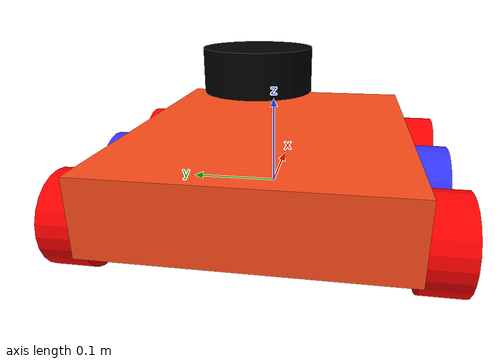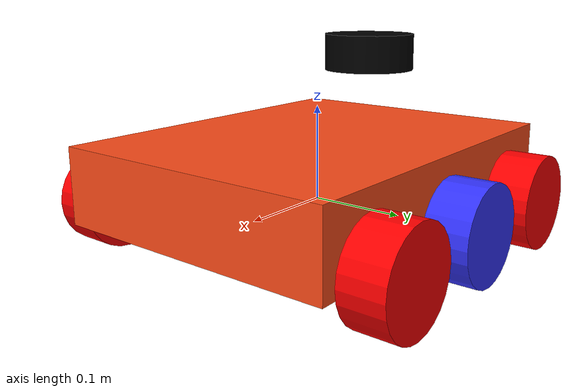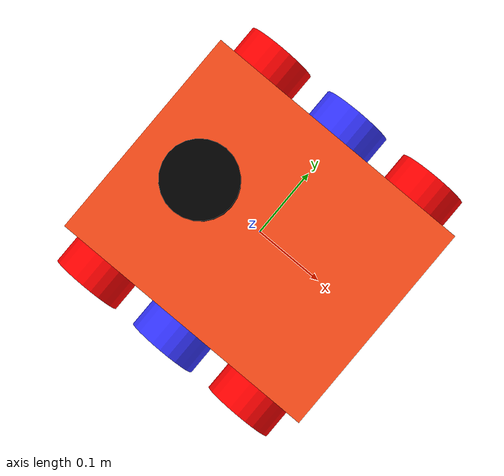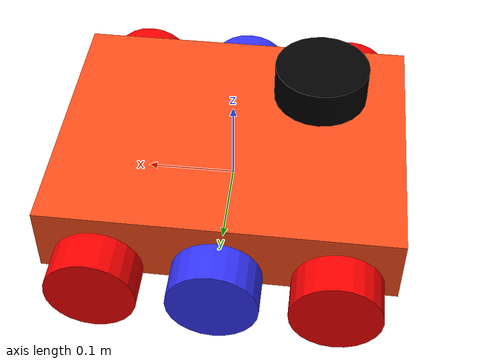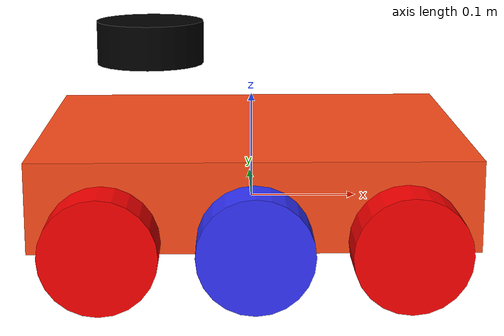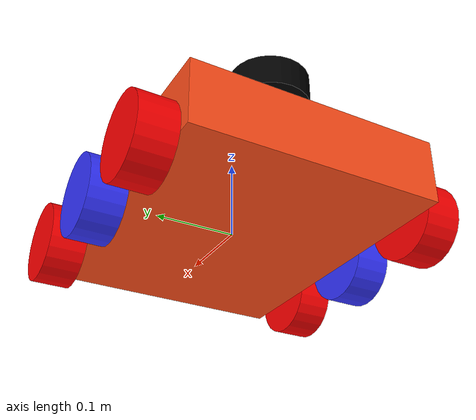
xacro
<?xml version="1.0"?>
<robot xmlns:xacro="http://www.ros.org/wiki/xacro"  name="robot">

    <xacro:arg name="sim_mode" default="false"/>
    <xacro:arg name="use_ros2_control" default="true"/>

    <xacro:include filename="robot_core.xacro" />

    <xacro:if value="$(arg use_ros2_control)">
        <xacro:include filename="ros2_control.xacro" />
    </xacro:if>
    <xacro:unless value="$(arg use_ros2_control)">
        <xacro:include filename="gazebo_diffdrive.xacro" />
    </xacro:unless>

    <xacro:include filename="lidar.xacro"/>

</robot>

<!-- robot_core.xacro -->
<robot xmlns:xacro="http://www.ros.org/wiki/xacro" >

    <xacro:include filename="inertial_macros.xacro"/>

    <xacro:property name="chassis_length" value="0.39"/>
    <xacro:property name="chassis_width" value="0.31"/>
    <xacro:property name="chassis_height" value="0.08"/>
    <xacro:property name="chassis_mass" value="1.0"/>
    <xacro:property name="wheel_radius" value="0.05"/>
    <xacro:property name="wheel_thickness" value="0.045"/>
    <xacro:property name="wheel_mass" value="0.05"/>
    <xacro:property name="wheel_offset_x" value="0.195"/>
    <xacro:property name="wheel_offset_y" value="0.1775"/>
    <xacro:property name="wheel_offset_z" value="0.01"/>

    <material name="white">
        <color rgba="1 1 1 1" />
    </material>

    <material name="orange">
        <color rgba="1 0.3 0.1 1"/>
    </material>

    <material name="blue">
        <color rgba="0.2 0.2 1 1"/>
    </material>

    <material name="black">
        <color rgba="0 0 0 1"/>
    </material>

    <material name="red">
        <color rgba="1 0 0 1"/>
    </material>

    <!-- BASE LINK -->

    <link name="base_link">

    </link>

    <!-- BASE_FOOTPRINT LINK -->

    <!-- CHASSIS LINK -->

    <joint name="chassis_joint" type="fixed">
        <parent link="base_link"/>
        <child link="chassis"/>
        <origin xyz="${-wheel_offset_x} 0 ${-wheel_offset_z}"/>
    </joint>

    <link name="chassis">
        <visual>
            <origin xyz="${chassis_length/2} 0 ${chassis_height/2}"/>
            <geometry>
                <box size="${chassis_length} ${chassis_width} ${chassis_height}"/>
            </geometry>
            <material name="orange"/>
        </visual>
        <collision>
            <origin xyz="${chassis_length/2} 0 ${chassis_height/2}"/>
            <geometry>
                <box size="${chassis_length} ${chassis_width} ${chassis_height}"/>
            </geometry>
        </collision>
        <xacro:inertial_box mass="0.5" x="${chassis_length}" y="${chassis_width}" z="${chassis_height}">
            <origin xyz="${chassis_length/2} 0 ${chassis_height/2}" rpy="0 0 0"/>
        </xacro:inertial_box>
    </link>

    <gazebo reference="chassis">
        <material>Gazebo/Orange</material>
    </gazebo>

    <!-- LEFT WHEEL LINK -->

    <joint name="left_wheel_joint" type="continuous">
        <parent link="base_link"/>
        <child link="left_wheel"/>
        <origin xyz="0 ${wheel_offset_y} 0" rpy="-${pi/2} 0 0" />
        <axis xyz="0 0 1"/>
    </joint>

    <link name="left_wheel">
        <visual>
            <geometry>
                <cylinder radius="${wheel_radius}" length="${wheel_thickness}"/>
            </geometry>
            <material name="blue"/>
        </visual>
        <collision>
            <geometry>
                <sphere radius="${wheel_radius}"/>
            </geometry>
        </collision>
        <xacro:inertial_cylinder mass="${wheel_mass}" length="${wheel_thickness}" radius="${wheel_radius}">
            <origin xyz="0 0 0" rpy="0 0 0"/>
        </xacro:inertial_cylinder>
    </link>

    <gazebo reference="left_wheel">
        <material>Gazebo/Blue</material>
    </gazebo>

    <!-- RIGHT WHEEL LINK -->

    <joint name="right_wheel_joint" type="continuous">
        <parent link="base_link"/>
        <child link="right_wheel"/>
        <origin xyz="0 ${-wheel_offset_y} 0" rpy="${pi/2} 0 0" />
        <axis xyz="0 0 -1"/>
    </joint>

    <link name="right_wheel">
        <visual>
            <geometry>
                <cylinder radius="${wheel_radius}" length="${wheel_thickness}"/>
            </geometry>
            <material name="blue"/>
        </visual>
        <collision>
            <geometry>
                <sphere radius="${wheel_radius}"/>
            </geometry>
        </collision>
        <xacro:inertial_cylinder mass="${wheel_mass}" length="${wheel_thickness}" radius="${wheel_radius}">
            <origin xyz="0 0 0" rpy="0 0 0"/>
        </xacro:inertial_cylinder>
    </link>

    <gazebo reference="right_wheel">
        <material>Gazebo/Blue</material>
    </gazebo>

    <!-- RIGHT ROLLER WHEEL LINK -->

    <joint name="right_roller_joint1" type="fixed">
        <parent link="base_link"/>
        <child link="right_roller1"/>
        <origin xyz="0.13 ${-wheel_offset_y} 0" rpy="${pi/2} 0 0" />
        <axis xyz="0 0 -1"/>
    </joint>

    <link name="right_roller1">
        <visual>
            <geometry>
                <cylinder radius="${wheel_radius}" length="${wheel_thickness}"/>
            </geometry>
            <material name="red"/>
        </visual>
        <collision>
            <geometry>
                <cylinder radius="${wheel_radius}" length="${wheel_thickness}"/>
            </geometry>
        </collision>
        <xacro:inertial_cylinder mass="${wheel_mass}" length="${wheel_thickness}" radius="${wheel_radius}">
            <origin xyz="0 0 0" rpy="0 0 0"/>
        </xacro:inertial_cylinder>
    </link>
    <gazebo reference="right_roller1">
        <material>Gazebo/Red</material>
        <mu1 value="0.001"/>
        <mu2 value="0.001"/>
    </gazebo>

    <!-- RIGHT ROLLER WHEEL LINK -->

    <joint name="right_roller_joint2" type="fixed">
        <parent link="base_link"/>
        <child link="right_roller2"/>
        <origin xyz="-0.13 ${-wheel_offset_y} 0" rpy="${pi/2} 0 0" />
        <axis xyz="0 0 -1"/>
    </joint>

    <link name="right_roller2">
        <visual>
            <geometry>
                <cylinder radius="${wheel_radius}" length="${wheel_thickness}"/>
            </geometry>
            <material name="red"/>
        </visual>
        <collision>
            <geometry>
                <cylinder radius="${wheel_radius}" length="${wheel_thickness}"/>
            </geometry>
        </collision>
        <xacro:inertial_cylinder mass="${wheel_mass}" length="${wheel_thickness}" radius="${wheel_radius}">
            <origin xyz="0 0 0" rpy="0 0 0"/>
        </xacro:inertial_cylinder>
    </link>
    <gazebo reference="right_roller2">
        <material>Gazebo/Red</material>
        <mu1 value="0.001"/>
        <mu2 value="0.001"/>
    </gazebo>

    <!-- LEFT ROLLER WHEEL LINK -->

    <joint name="left_roller_joint1" type="fixed">
        <parent link="base_link"/>
        <child link="left_roller1"/>
        <origin xyz="0.13 ${wheel_offset_y} 0" rpy="-${pi/2} 0 0" />
        <axis xyz="0 0 1"/>
    </joint>

    <link name="left_roller1">
        <visual>
            <geometry>
                <cylinder radius="${wheel_radius}" length="${wheel_thickness}"/>
            </geometry>
            <material name="red"/>
        </visual>
        <collision>
            <geometry>
                <cylinder radius="${wheel_radius}" length="${wheel_thickness}"/>
            </geometry>
        </collision>
        <xacro:inertial_cylinder mass="${wheel_mass}" length="${wheel_thickness}" radius="${wheel_radius}">
            <origin xyz="0 0 0" rpy="0 0 0"/>
        </xacro:inertial_cylinder>
    </link>
    <gazebo reference="left_roller1">
        <material>Gazebo/Red</material>
        <mu1 value="0.001"/>
        <mu2 value="0.001"/>
    </gazebo>

        <!-- LEFT ROLLER WHEEL LINK -->

    <joint name="left_roller_joint2" type="fixed">
        <parent link="base_link"/>
        <child link="left_roller2"/>
        <origin xyz="-0.13 ${wheel_offset_y} 0" rpy="-${pi/2} 0 0" />
        <axis xyz="0 0 1"/>
    </joint>

    <link name="left_roller2">
        <visual>
            <geometry>
                <cylinder radius="${wheel_radius}" length="${wheel_thickness}"/>
            </geometry>
            <material name="red"/>
        </visual>
        <collision>
            <geometry>
                <cylinder radius="${wheel_radius}" length="${wheel_thickness}"/>
            </geometry>
        </collision>
        <xacro:inertial_cylinder mass="${wheel_mass}" length="${wheel_thickness}" radius="${wheel_radius}">
            <origin xyz="0 0 0" rpy="0 0 0"/>
        </xacro:inertial_cylinder>
    </link>
    <gazebo reference="left_roller2">
        <material>Gazebo/Red</material>
        <mu1 value="0.001"/>
        <mu2 value="0.001"/>
    </gazebo>

</robot>

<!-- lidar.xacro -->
<robot xmlns:xacro="http://www.ros.org/wiki/xacro" >

    <joint name="laser_joint" type="fixed">
        <parent link="chassis"/>
        <child link="laser_frame"/>
        <origin xyz="0.1 0 0.16" rpy="0 0 0"/>
    </joint>

    <link name="laser_frame">
        <visual>
            <geometry>
                <cylinder radius="0.05" length="0.04"/>
            </geometry>
            <material name="black"/>
        </visual>
        <collision>
            <geometry>
                <cylinder radius="0.05" length="0.04"/>
            </geometry>
        </collision>
        <xacro:inertial_cylinder mass="0.1" length="0.04" radius="0.05">
            <origin xyz="0 0 0" rpy="0 0 0"/>
        </xacro:inertial_cylinder>
    </link>

    <gazebo reference="laser_frame">
        <material>Gazebo/Black</material>

        <sensor name="laser" type="ray">
            <pose> 0 0 0 0 0 0 </pose>
            <visualize>true</visualize>
            <update_rate>10</update_rate>
            <ray>
                <scan>
                    <horizontal>
                        <samples>360</samples>
                        <min_angle>-3.14</min_angle>
                        <max_angle>3.14</max_angle>
                    </horizontal>
                </scan>
                <range>
                    <min>0.3</min>
                    <max>12</max>
                </range>
            </ray>
            <plugin name="laser_controller" filename="libgazebo_ros_ray_sensor.so">
                <ros>
                    <remapping>~/out:=scan</remapping>
                </ros>
                <output_type>sensor_msgs/LaserScan</output_type>
                <frame_name>laser_frame</frame_name>
            </plugin>
        </sensor>
    </gazebo>

</robot>
